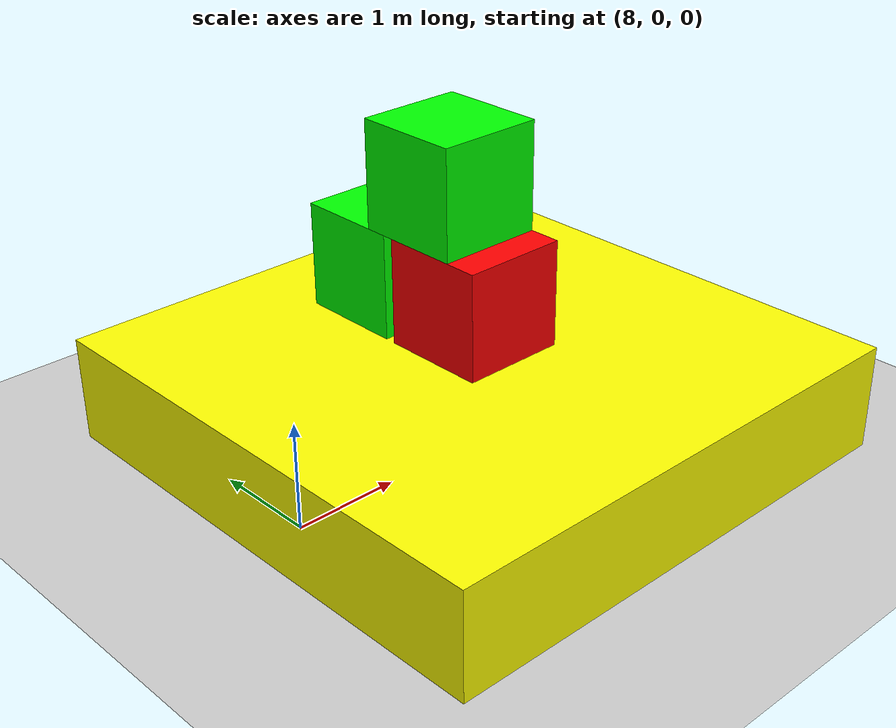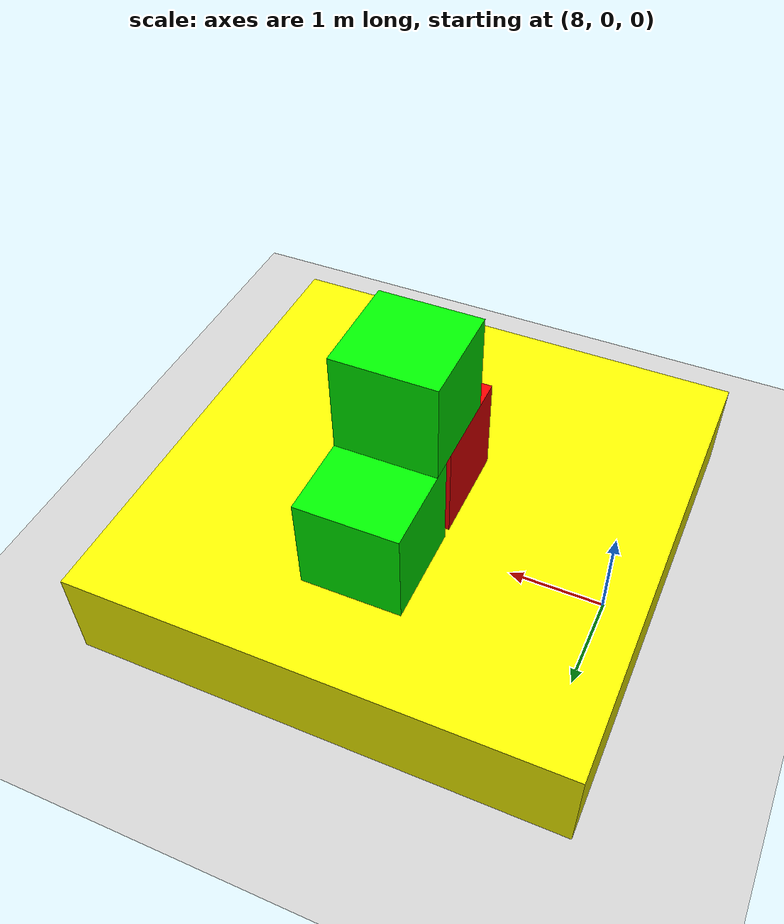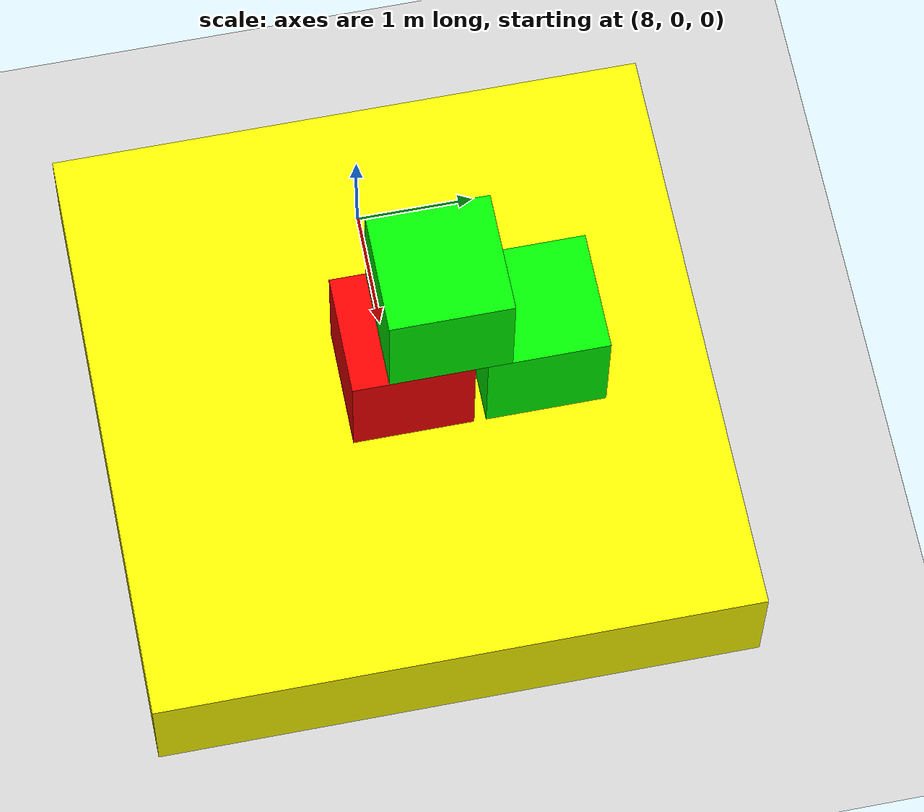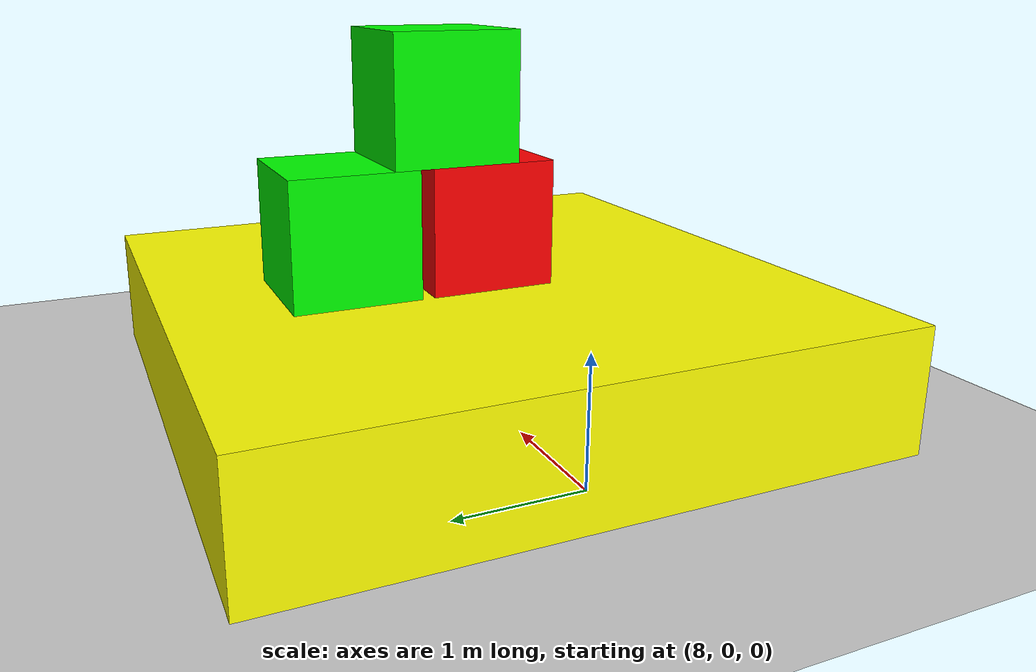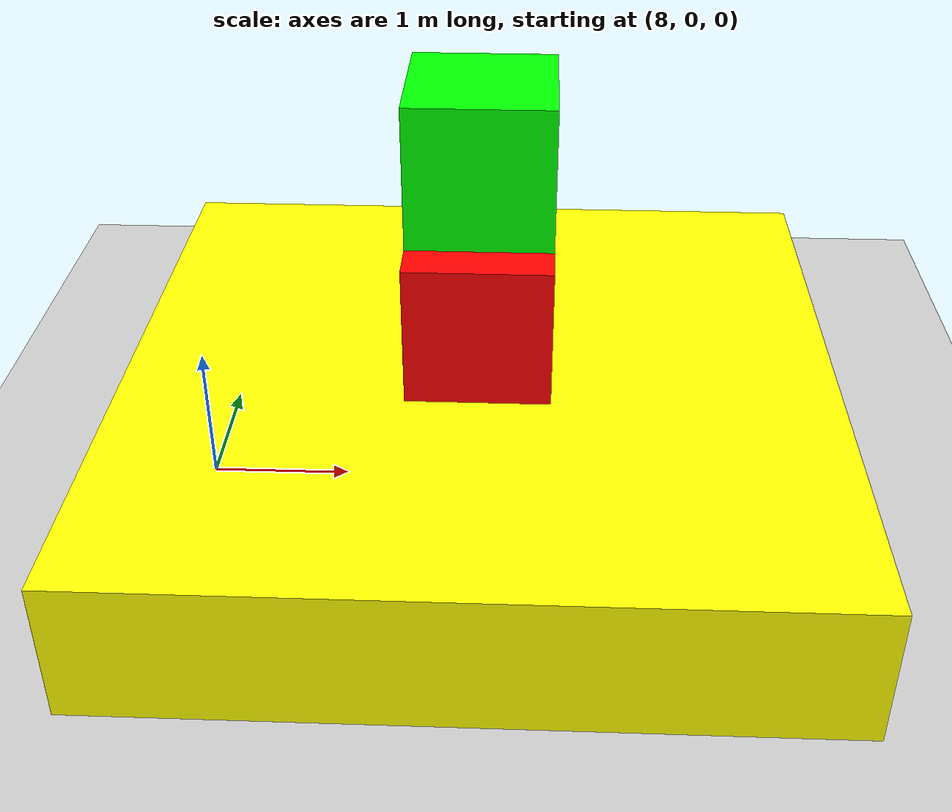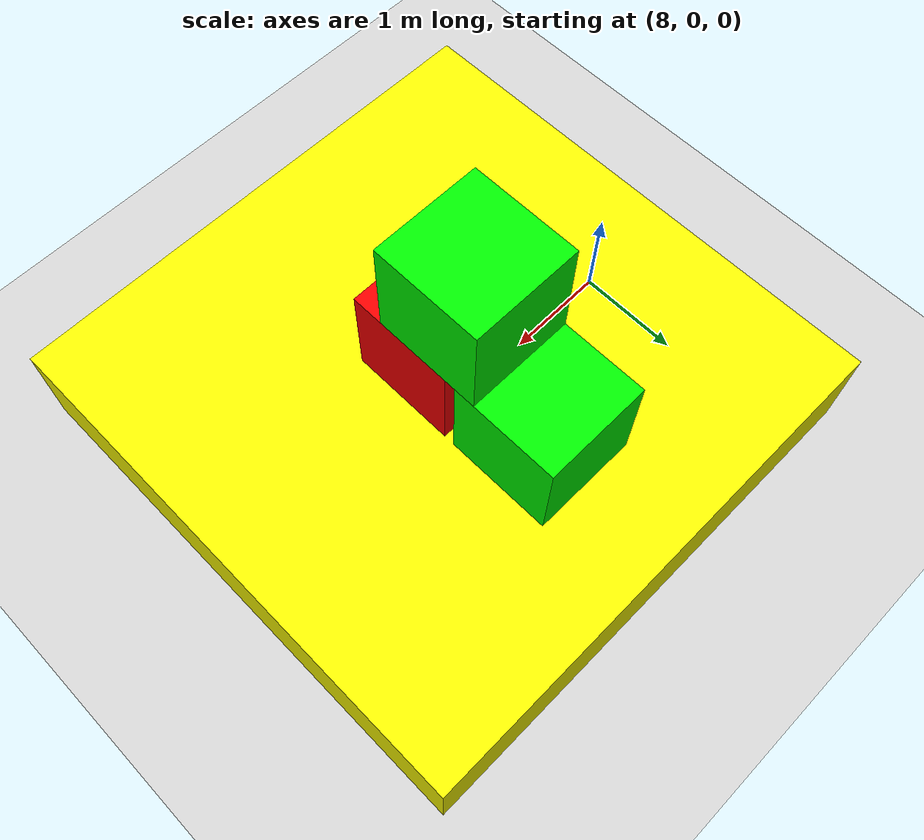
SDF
<?xml version="1.0" ?>
<sdf version="1.6">
  <world name="shapes_category_bitmask">
    <model name="ground_plane">
      <static>true</static>
      <link name="link">
        <collision name="collision">
          <geometry>
            <plane>
              <normal>0 0 1</normal>
            </plane>
          </geometry>
        </collision>
        <visual name="visual">
          <geometry>
            <plane>
              <normal>0 0 1</normal>
              <size>100 100</size>
            </plane>
          </geometry>
          <material>
            <ambient>0.8 0.8 0.8 1</ambient>
            <diffuse>0.8 0.8 0.8 1</diffuse>
            <specular>0.8 0.8 0.8 1</specular>
          </material>
        </visual>
      </link>
    </model>

    <model name="category_a_box_0">
      <pose>10 0 1.5 0 0 0</pose>
      <link name="link">
        <inertial>
          <inertia>
            <ixx>1</ixx>
            <ixy>0</ixy>
            <ixz>0</ixz>
            <iyy>1</iyy>
            <iyz>0</iyz>
            <izz>1</izz>
          </inertia>
          <mass>1.0</mass>
        </inertial>
        <collision name="collision">
          <geometry>
            <box>
              <size>1 1 1</size>
            </box>
          </geometry>
          <surface>
            <contact>
              <!-- category_bitmask: 0001, collide_bitmask: 0110 -->
              <category_bitmask>1</category_bitmask>
              <collide_bitmask>6</collide_bitmask>
            </contact>
          </surface>
        </collision>
        <visual name="visual">
          <geometry>
            <box>
              <size>1 1 1</size>
            </box>
          </geometry>
          <material>
            <ambient>1 0 0 1</ambient>
            <diffuse>1 0 0 1</diffuse>
            <specular>1 0 0 1</specular>
          </material>
        </visual>
      </link>
    </model>

    <model name="category_a_box_1">
      <pose>10 0 1.5 0 0 0</pose>
      <link name="link">
        <inertial>
          <inertia>
            <ixx>1</ixx>
            <ixy>0</ixy>
            <ixz>0</ixz>
            <iyy>1</iyy>
            <iyz>0</iyz>
            <izz>1</izz>
          </inertia>
          <mass>1.0</mass>
        </inertial>
        <collision name="collision">
          <geometry>
            <box>
              <size>1 1 1</size>
            </box>
          </geometry>
          <surface>
            <contact>
              <!-- category_bitmask: 0001, collide_bitmask: 0110 -->
              <category_bitmask>1</category_bitmask>
              <collide_bitmask>6</collide_bitmask>
            </contact>
          </surface>
        </collision>
        <visual name="visual">
          <geometry>
            <box>
              <size>1 1 1</size>
            </box>
          </geometry>
          <material>
            <ambient>1 0 0 1</ambient>
            <diffuse>1 0 0 1</diffuse>
            <specular>1 0 0 1</specular>
          </material>
        </visual>
      </link>
    </model>

    <model name="category_b_box_0">
      <pose>10 1.1 1.5 0 0 0</pose>
      <link name="link">
        <inertial>
          <inertia>
            <ixx>1</ixx>
            <ixy>0</ixy>
            <ixz>0</ixz>
            <iyy>1</iyy>
            <iyz>0</iyz>
            <izz>1</izz>
          </inertia>
          <mass>1.0</mass>
        </inertial>
        <collision name="collision">
          <geometry>
            <box>
              <size>1 1 1</size>
            </box>
          </geometry>
          <surface>
            <contact>
              <!-- category_bitmask: 0010, collide_bitmask: 0101 -->
              <category_bitmask>2</category_bitmask>
              <collide_bitmask>5</collide_bitmask>
            </contact>
          </surface>
        </collision>
        <visual name="visual">
          <geometry>
            <box>
              <size>1 1 1</size>
            </box>
          </geometry>
          <material>
            <ambient>0 1 0 1</ambient>
            <diffuse>0 1 0 1</diffuse>
            <specular>0 1 0 1</specular>
          </material>
        </visual>
      </link>
    </model>

    <model name="category_b_box_1">
      <pose>10 0.3 2.5 0 0 0</pose>
      <link name="link">
        <inertial>
          <inertia>
            <ixx>1</ixx>
            <ixy>0</ixy>
            <ixz>0</ixz>
            <iyy>1</iyy>
            <iyz>0</iyz>
            <izz>1</izz>
          </inertia>
          <mass>1.0</mass>
        </inertial>
        <collision name="collision">
          <geometry>
            <box>
              <size>1 1 1</size>
            </box>
          </geometry>
          <surface>
            <contact>
              <!-- category_bitmask: 0010, collide_bitmask: 0101 -->
              <category_bitmask>2</category_bitmask>
              <collide_bitmask>5</collide_bitmask>
            </contact>
          </surface>
        </collision>
        <visual name="visual">
          <geometry>
            <box>
              <size>1 1 1</size>
            </box>
          </geometry>
          <material>
            <ambient>0 1 0 1</ambient>
            <diffuse>0 1 0 1</diffuse>
            <specular>0 1 0 1</specular>
          </material>
        </visual>
      </link>
    </model>

    <model name="category_c_box_0">
      <pose>10 0 0.5 0 0 0</pose>
      <link name="link">
        <inertial>
          <inertia>
            <ixx>1</ixx>
            <ixy>0</ixy>
            <ixz>0</ixz>
            <iyy>1</iyy>
            <iyz>0</iyz>
            <izz>1</izz>
          </inertia>
          <mass>1.0</mass>
        </inertial>
        <collision name="collision">
          <geometry>
            <box>
              <size>5 5 1</size>
            </box>
          </geometry>
          <surface>
            <contact>
              <!-- category_bitmask: 0100, collide_bitmask: 0011 -->
              <category_bitmask>4</category_bitmask>
              <collide_bitmask>3</collide_bitmask>
            </contact>
          </surface>
        </collision>
        <visual name="visual">
          <geometry>
            <box>
              <size>5 5 1</size>
            </box>
          </geometry>
          <material>
            <ambient>1 1 0 1</ambient>
            <diffuse>1 1 0 1</diffuse>
            <specular>1 1 0 1</specular>
          </material>
        </visual>
      </link>
    </model>

  </world>
</sdf>
